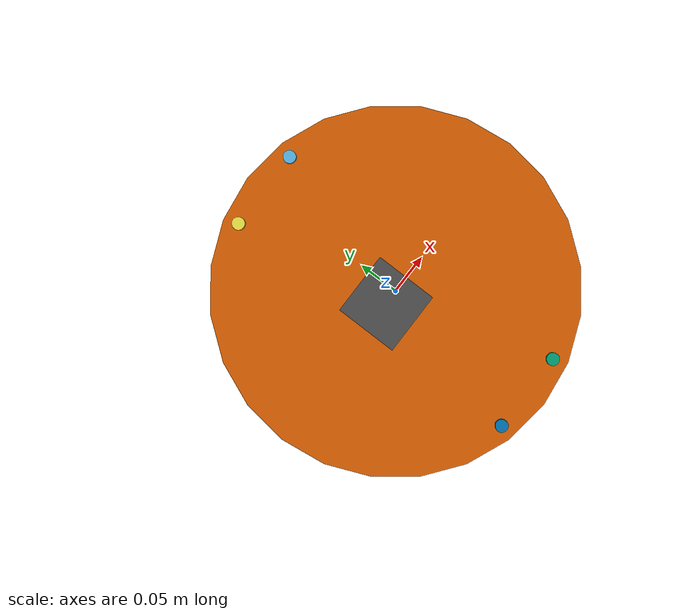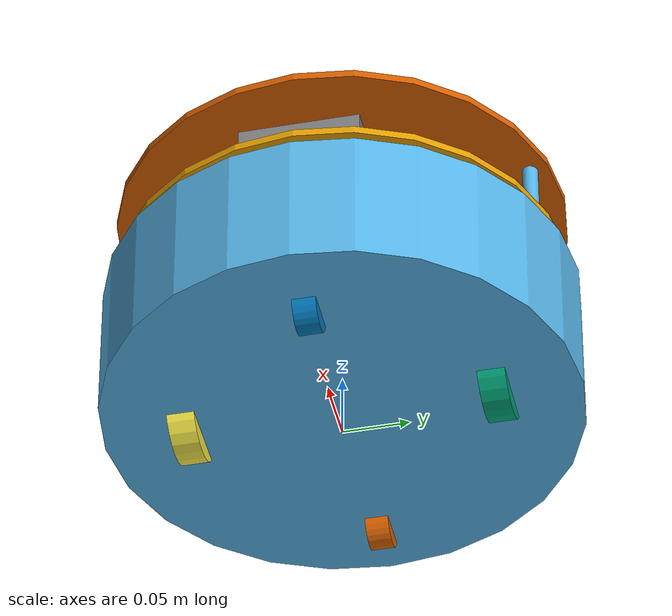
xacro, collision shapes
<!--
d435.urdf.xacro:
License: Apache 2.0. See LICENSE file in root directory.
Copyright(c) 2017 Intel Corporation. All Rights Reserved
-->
<?xml version="1.0"?>
<!--
    - Base      : kobuki
    - Stacks    : hexagons
    - 3d Sensor : d435
-->
<robot name="robot" xmlns:xacro="http://ros.org/wiki/xacro">

  <xacro:include filename="$(find robot_description)/urdf/kobuki.urdf.xacro" />
  <xacro:include filename="$(find robot_description)/urdf/stacks/custom_hexagons.urdf.xacro"/>
  <xacro:include filename="$(find robot_description)/urdf/sensors/d435.urdf.xacro"/>
  <xacro:include filename="$(find robot_description)/urdf/sensors/rplidar.urdf.xacro"/>

  <kobuki/>

  <!-- FOR TESTING -->

  <stack_hexagons parent="base_link"/>

  <sensor_d435 parent="plate_bottom_link">
    <origin xyz="0.115 0 0.0025" rpy="0 0 0"/>
  </sensor_d435>

  <rplidar parent="plate_middle_link">
    <origin xyz="0 0 0.0025" rpy="0 0 ${M_PI}"/>
  </rplidar>
</robot>

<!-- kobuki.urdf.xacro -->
<robot name="kobuki" xmlns:xacro="http://ros.org/wiki/xacro">
  <xacro:include filename="$(find robot_description)/urdf/common_properties.urdf.xacro"/>

  <!-- Kobuki -->
  <xacro:macro name="kobuki">
    <link name="base_footprint"/>
    <joint name="base_joint" type="fixed">
      <origin xyz="0 0 0.0102" rpy="0 0 0" />
      <parent link="base_footprint"/>
      <child link="base_link" />
    </joint>
    <link name="base_link">
      <visual>
        <geometry>
          <!-- new mesh -->
          <mesh filename="package://robot_description/meshes/main_body.dae" />
        </geometry>
        <origin xyz="0.001 0 0.05199" rpy="0 0 0"/>
      </visual>
      <collision name="base">
        <geometry>
          <cylinder length="0.10938" radius="0.178"/>
        </geometry>
        <origin xyz="0.0 0 0.05949" rpy="0 0 0"/>
      </collision>
      <inertial>
        <!-- COM experimentally determined -->
        <origin xyz="0.01 0 0"/>
        <mass value="2.6"/> <!-- 2.4/2.6 kg for small/big battery pack -->
        <inertia ixx="0.019995" ixy="0.0" ixz="0.0"
                 iyy="0.019995" iyz="0.0"
                 izz="0.03675" />
      </inertial>
    </link>

    <joint name="wheel_left_joint" type="continuous">
      <parent link="base_link"/>
      <child link="wheel_left_link"/>
      <origin xyz="0.00 ${0.23/2} 0.0250" rpy="${-M_PI/2} 0 0"/>
      <axis xyz="0 0 1"/>
    </joint>
    <link name="wheel_left_link">
      <visual>
        <geometry>
          <mesh filename="package://robot_description/meshes/wheel.dae"/>
        </geometry>
        <origin xyz="0 0 0" rpy="0 0 0"/>
      </visual>
      <collision>
        <geometry>
          <cylinder length="0.0206" radius="0.0352"/>
        </geometry>
        <origin rpy="0 0 0" xyz="0 0 0"/>
      </collision>
      <inertial>
        <mass value="0.01" />
        <origin xyz="0 0 0" />
        <inertia ixx="0.001" ixy="0.0" ixz="0.0"
                 iyy="0.001" iyz="0.0"
                 izz="0.001" />
      </inertial>
    </link>

    <joint name="wheel_right_joint" type="continuous">
      <parent link="base_link"/>
      <child link="wheel_right_link"/>
      <origin xyz="0.00 -${0.23/2} 0.0250" rpy="${-M_PI/2} 0 0"/>
      <axis xyz="0 0 1"/>
    </joint>
    <link name="wheel_right_link">
      <visual>
        <geometry>
          <mesh filename="package://robot_description/meshes/wheel.dae"/>
        </geometry>
        <origin xyz="0 0 0" rpy="0 0 0"/>
      </visual>
      <collision>
        <geometry>
          <cylinder length="0.0206" radius="0.0350"/>
        </geometry>
        <origin rpy="0 0 0" xyz="0 0 0"/>
      </collision>
      <inertial>
        <mass value="0.01" />
        <origin xyz="0 0 0" />
        <inertia ixx="0.001" ixy="0.0" ixz="0.0"
                 iyy="0.001" iyz="0.0"
                 izz="0.001" />
      </inertial>
    </link>

    <joint name="caster_front_joint" type="fixed">
      <parent link="base_link"/>
      <child link="caster_front_link"/>
      <origin xyz="0.115 0.0 0.007" rpy="${-M_PI/2} 0 0"/>
    </joint>
    <link name="caster_front_link">
      <collision>
        <geometry>
          <cylinder length="0.0176" radius="0.017"/>
        </geometry>
        <origin rpy="0 0 0" xyz="0 0 0"/>
      </collision>
      <inertial>
        <mass value="0.01" />
        <origin xyz="0 0 0" />
        <inertia ixx="0.001" ixy="0.0" ixz="0.0"
                 iyy="0.001" iyz="0.0"
                 izz="0.001" />
      </inertial>
    </link>

    <joint name="caster_back_joint" type="fixed">
      <parent link="base_link"/>
      <child link="caster_back_link"/>
      <origin xyz="-0.135 0.0 0.009" rpy="${-M_PI/2} 0 0"/>
    </joint>
    <link name="caster_back_link">
      <collision>
        <geometry>
          <cylinder length="0.0176" radius="0.017"/>
        </geometry>
        <origin rpy="0 0 0" xyz="0 0 0"/>
      </collision>
      <inertial>
        <mass value="0.01" />
        <origin xyz="0 0 0" />
        <inertia ixx="0.001" ixy="0.0" ixz="0.0"
                 iyy="0.001" iyz="0.0"
                 izz="0.001" />
      </inertial>
    </link>

    <!-- Kobuki's sensors -->
    <joint name="gyro_joint" type="fixed">
      <axis xyz="0 1 0"/>
      <origin xyz="0.056 0.062 0.0202" rpy="0 0 0"/>
      <parent link="base_link"/>
      <child link="gyro_link"/>
    </joint>
    <link name="gyro_link">
      <inertial>
        <mass value="0.001"/>
        <origin xyz="0 0 0" rpy="0 0 0"/>
        <inertia ixx="0.0001" ixy="0" ixz="0"
                 iyy="0.000001" iyz="0"
                 izz="0.0001"/>
      </inertial>
    </link>

    <joint name="cliff_sensor_left_joint" type="fixed">
      <origin xyz="0.08734 0.13601 0.0214" rpy="0 ${M_PI/2} 0" />
      <parent link="base_link"/>
      <child link="cliff_sensor_left_link" />
    </joint>
    <link name="cliff_sensor_left_link">
      <inertial>
        <mass value="0.0001" />
        <origin xyz="0 0 0" />
        <inertia ixx="0.0001" ixy="0.0" ixz="0.0"
                 iyy="0.0001" iyz="0.0"
                 izz="0.0001" />
      </inertial>
    </link>

    <joint name="cliff_sensor_right_joint" type="fixed">
      <origin xyz="0.085 -0.13601 0.0214" rpy="0 ${M_PI/2} 0" />
      <parent link="base_link"/>
      <child link="cliff_sensor_right_link" />
    </joint>
    <link name="cliff_sensor_right_link">
      <inertial>
        <mass value="0.0001" />
        <origin xyz="0 0 0" />
        <inertia ixx="0.0001" ixy="0.0" ixz="0.0"
                 iyy="0.0001" iyz="0.0"
                 izz="0.0001" />
      </inertial>
    </link>

    <joint name="cliff_sensor_front_joint" type="fixed">
      <origin xyz="0.156 0.00 0.0214" rpy="0 ${M_PI/2} 0" />
      <parent link="base_link"/>
      <child link="cliff_sensor_front_link" />
    </joint>
    <link name="cliff_sensor_front_link">
      <inertial>
        <mass value="0.0001" />
        <origin xyz="0 0 0" />
        <inertia ixx="0.0001" ixy="0.0" ixz="0.0"
                 iyy="0.0001" iyz="0.0"
                 izz="0.0001" />
      </inertial>
    </link>

  </xacro:macro>
</robot>

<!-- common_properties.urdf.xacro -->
<robot xmlns:xacro="http://ros.org/wiki/xacro">
  <!--
    These properties must be observed by any machine
    that wants to be defined as a turtlebot. Refer
    to the REP for more details.

    http://www.ros.org/reps/rep-0119.html
   -->

  <!--
    Various useful properties such as constants and materials
  -->
  <xacro:property name="M_PI" value="3.1415926535897931" />

  <xacro:property name="material_white">
    <material name="white">
      <color rgba="1 1 1 1"/>
    </material>
  </xacro:property>
  <xacro:property name="material_grey">
    <material name="grey">
      <color rgba="0.5 0.5 0.5 1"/>
    </material>
  </xacro:property>
  <xacro:property name="material_light_grey">
    <material name="light_grey">
      <color rgba="0.6 0.6 0.6 1"/>
    </material>
  </xacro:property>
  <xacro:property name="material_dark_grey">
    <material name="dark_grey">
      <color rgba="0.3 0.3 0.3 1"/>
    </material>
  </xacro:property>
  <xacro:property name="material_black">
    <material name="black">
      <color rgba="0.1 0.1 0.1 1"/>
    </material>
  </xacro:property>
  <xacro:property name="material_red">
    <material name="red">
      <color rgba="1 0 0 1"/>
    </material>
  </xacro:property>
  <xacro:property name="material_green">
    <material name="green">
      <color rgba="0.0 0.8 0.0 1"/>
    </material>
  </xacro:property>
  <xacro:property name="material_blue">
    <material name="blue">
      <color rgba="0.0 0.0 1.0 1"/>
    </material>
  </xacro:property>
  <xacro:property name="material_grey_blue">
    <material name="grey_blue">
      <color rgba="0.4 0.4 1.0 1"/>
    </material>
  </xacro:property>
  <xacro:property name="material_orange">
    <material name="orange">
      <color rgba="1.0 0.7 0.0 1"/>
    </material>
  </xacro:property>
  <xacro:property name="material_aluminum">
    <material name="aluminum">
	    <color rgba="0.5 0.5 0.5 1"/>
    </material>
  </xacro:property>
</robot>

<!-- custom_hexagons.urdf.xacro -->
<!--
  Hexagon stacks
 -->
<robot name="stack_hexagons" xmlns:xacro="http://ros.org/wiki/xacro">
  <xacro:include filename="$(find robot_description)/urdf/common_properties.urdf.xacro"/>

  <!-- Xacro properties -->
  <xacro:property name="M_SCALE" value="0.001"/>

  <!-- Xacro macros -->
  <!-- Pole macros -->
  <xacro:macro name="stack_bottom_pole" params="parent number x_loc y_loc z_loc">
    <joint name="pole_bottom_${number}_joint" type="fixed">
      <origin xyz="${x_loc} ${y_loc} ${z_loc}" rpy="0 0 0"/>
      <parent link="${parent}"/>
      <child link="pole_bottom_${number}_link"/>
    </joint>
    <link name="pole_bottom_${number}_link">
      <visual>
        <origin xyz="0 0 0" rpy="0 0 0"/>
        <geometry>
          <mesh filename="package://robot_description/meshes/stacks/hexagons/pole_bottom.dae"/>
        </geometry>
      </visual>
      <collision>
        <origin xyz="0 0 0" rpy="0 0 0"/>
        <geometry>
          <cylinder length="0.0492" radius="0.006"/>
        </geometry>
      </collision>
      <inertial>
        <mass value="0.008"/>
        <origin xyz="0 0 0" rpy="0 0 0"/>
        <inertia ixx="0.000001686" ixy="0.0" ixz="0.0"
                 iyy="0.000001686" iyz="0.0"
                 izz="0.000000144"/>
      </inertial>
    </link>
  </xacro:macro>

  <xacro:macro name="stack_middle_pole" params="parent number x_loc y_loc z_loc">
    <joint name="pole_middle_${number}_joint" type="fixed">
      <origin xyz="${x_loc} ${y_loc} ${z_loc}" rpy="0 0 0" />
      <parent link="${parent}"/>
      <child link="pole_middle_${number}_link"/>
    </joint>
    <link name="pole_middle_${number}_link">
      <visual>
        <origin xyz="0 0 0" rpy="0 ${M_PI} 0"/>
        <geometry>
          <mesh filename="package://robot_description/meshes/stacks/hexagons/pole_middle.dae"/>
        </geometry>
      </visual>
      <collision>
        <origin xyz="0 0 0" rpy="0 0 0"/>
        <geometry>
          <cylinder length="0.0608" radius="0.006"/>
        </geometry>
      </collision>
      <inertial>
        <mass value="0.012"/>
        <origin xyz="0 0 0"/>
        <inertia ixx="0.000003805" ixy="0.0" ixz="0.0"
                 iyy="0.000003805" iyz="0.0"
                 izz="0.000000216"/>
      </inertial>
    </link>
  </xacro:macro>

  <xacro:macro name="stack_top_pole" params="parent number x_loc y_loc z_loc">
    <joint name="pole_top_${number}_joint" type="fixed">
      <origin xyz="${x_loc} ${y_loc} ${z_loc}" rpy="0 0 0"/>
      <parent link="${parent}"/>
      <child link="pole_top_${number}_link"/>
    </joint>
    <link name="pole_top_${number}_link">
      <visual>
        <origin xyz="0 0 0" rpy="0 ${M_PI} 0"/>
        <geometry>
          <cylinder length="0.05" radius="0.003"/>
          <xacro:insert_block name="material_aluminum"/>
        </geometry>
      </visual>
      <collision>
        <origin xyz="0 0 0" rpy="0 0 0"/>
        <geometry>
          <cylinder length="0.05" radius="0.003"/>
        </geometry>
      </collision>
      <inertial>
        <mass value="0.060"/>
        <origin xyz="0 0 0"/>
        <inertia ixx="0.000206991" ixy="0.0" ixz="0.0"
                 iyy="0.000206991" iyz="0.0"
                 izz="0.000001080"/>
      </inertial>
    </link>
  </xacro:macro>

  <xacro:macro name="stack_hexagons" params="parent">
    <stack_bottom_pole parent="${parent}" number="0" x_loc= "0.120" y_loc= "0.082" z_loc="0.1028"/>
    <stack_bottom_pole parent="${parent}" number="1" x_loc= "0.055" y_loc= "0.120" z_loc="0.1028"/>
    <stack_bottom_pole parent="${parent}" number="2" x_loc="-0.055" y_loc= "0.120" z_loc="0.1028"/>
    <stack_bottom_pole parent="${parent}" number="3" x_loc= "0.120" y_loc="-0.082" z_loc="0.1028"/>
    <stack_bottom_pole parent="${parent}" number="4" x_loc= "0.055" y_loc="-0.120" z_loc="0.1028"/>
    <stack_bottom_pole parent="${parent}" number="5" x_loc="-0.055" y_loc="-0.120" z_loc="0.1028"/>

    <joint name="plate_bottom_joint" type="fixed">
      <origin xyz="0.02364 0.0 0.1306" rpy="0 0 0"/>
      <parent link="${parent}"/>
      <child link="plate_bottom_link"/>
    </joint>
    <link name="plate_bottom_link">
      <visual>
        <origin xyz="0 0 0" rpy="0 0 0"/>
        <geometry>
          <mesh filename="package://robot_description/meshes/stacks/hexagons/plate_bottom.dae"/>
        </geometry>
      </visual>
      <collision>
        <origin xyz="-0.02364 0 0" rpy="0 0 0"/>
        <geometry>
          <cylinder length="0.006" radius="0.170"/>
        </geometry>
      </collision>
      <inertial>
        <mass value="0.520" />
        <origin xyz="0 0 0" />
        <inertia ixx="0.003328" ixy="0.0" ixz="0.0"
                 iyy="0.003328" iyz="0.0"
                 izz="0.006656" />
      </inertial>
    </link>

    <stack_middle_pole parent="${parent}" number="0" x_loc= "0.0381" y_loc= "0.1505" z_loc="0.1640"/>
    <stack_middle_pole parent="${parent}" number="1" x_loc= "0.0381" y_loc="-0.1505" z_loc="0.1640"/>
    <stack_middle_pole parent="${parent}" number="2" x_loc="-0.0381" y_loc= "0.1505" z_loc="0.1640"/>
    <stack_middle_pole parent="${parent}" number="3" x_loc="-0.0381" y_loc="-0.1505" z_loc="0.1640"/>

    <joint name="plate_middle_joint" type="fixed">
      <origin xyz="-0.01364 0.0 0.1874" rpy="0 0 0"/>
      <parent link="${parent}"/>
      <child link="plate_middle_link"/>
    </joint>
    <link name="plate_middle_link">
      <visual>
        <origin xyz="0 0 0" rpy="0 0 0"/>
        <geometry>
          <mesh filename="package://robot_description/meshes/stacks/hexagons/plate_top.dae"/>
        </geometry>
      </visual>
      <collision>
        <origin xyz="0.01364 0.0 0.0" rpy="0 0 0"/>
        <geometry>
          <cylinder length="0.006" radius="0.170"/>
        </geometry>
      </collision>
      <inertial>
        <mass value="0.520" />
        <origin xyz="0 0 0" />
        <inertia ixx="0.003328" ixy="0.0" ixz="0.0"
                 iyy="0.003328" iyz="0.0"
                 izz="0.006656" />
      </inertial>
    </link>

  </xacro:macro>
</robot>

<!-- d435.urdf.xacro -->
<robot name="sensor_d435" xmlns:xacro="http://ros.org/wiki/xacro">
  <xacro:include filename="$(find robot_description)/urdf/common_properties.urdf.xacro"/>

  <xacro:macro name="sensor_d435" params="parent *origin">
    <!-- The following values are approximate, and the camera node
     publishing TF values with actual calibrated camera extrinsic values -->
    <xacro:property name="d435_cam_depth_to_left_ir_offset"  value="0.0"/>
    <xacro:property name="d435_cam_depth_to_right_ir_offset" value="-0.050"/>
    <xacro:property name="d435_cam_depth_to_color_offset"    value="0.015"/>

    <!-- The following values model the aluminum peripherial case for the
  	D435 camera, with the camera joint represented by the actual
  	peripherial camera tripod mount -->
    <xacro:property name="d435_cam_width"  value="0.090"/>
    <xacro:property name="d435_cam_height" value="0.025"/>
    <xacro:property name="d435_cam_depth"  value="0.02505"/>
    <xacro:property name="d435_cam_mount_from_center_offset" value="0.0149"/>

    <!-- The following offset is relative the the physical D435 camera peripherial
  	camera tripod mount -->
    <xacro:property name="d435_cam_depth_px" value="${d435_cam_mount_from_center_offset}"/>
    <xacro:property name="d435_cam_depth_py" value="0.0175"/>
    <xacro:property name="d435_cam_depth_pz" value="${d435_cam_height/2}"/>

    <!-- camera body, with origin at bottom screw mount -->
    <joint name="camera_joint" type="fixed">
      <xacro:insert_block name="origin" />
      <parent link="${parent}"/>
      <child link="camera_bottom_screw_frame" />
    </joint>
    <link name="camera_bottom_screw_frame"/>

    <joint name="camera_link_joint" type="fixed">
      <origin xyz="0 ${d435_cam_depth_py} ${d435_cam_depth_pz}" rpy="0 0 0"/>
      <parent link="camera_bottom_screw_frame"/>
      <child link="camera_link" />
    </joint>

    <link name="camera_link">
      <visual>
      <origin xyz="${d435_cam_mount_from_center_offset} ${-d435_cam_depth_py} 0" rpy="${M_PI/2} 0 ${M_PI/2}"/>
        <geometry>
          <mesh filename="package://robot_description/meshes/sensors/d435.dae" />
        </geometry>
        <xacro:insert_block name="material_aluminum"/>
      </visual>
      <collision>
        <origin xyz="0 ${-d435_cam_depth_py} 0" rpy="0 0 0"/>
        <geometry>
          <box size="${d435_cam_depth} ${d435_cam_width} ${d435_cam_height}"/>
        </geometry>
      </collision>
      <inertial>
        <!-- The following are not reliable values, and should not be used for modeling -->
        <mass value="0.564" />
        <origin xyz="0 0 0" />
        <inertia ixx="0.003881243" ixy="0.0" ixz="0.0"
                 iyy="0.000498940" iyz="0.0"
                 izz="0.003879257" />
      </inertial>
    </link>

    <!-- camera depth joints and links -->
    <joint name="camera_depth_joint" type="fixed">
      <origin xyz="0 0 0" rpy="0 0 0"/>
      <parent link="camera_link"/>
      <child link="camera_depth_frame" />
    </joint>
    <link name="camera_depth_frame"/>

    <joint name="camera_depth_optical_joint" type="fixed">
      <origin xyz="0 0 0" rpy="${-M_PI/2} 0 ${-M_PI/2}" />
      <parent link="camera_depth_frame" />
      <child link="camera_depth_optical_frame" />
    </joint>
    <link name="camera_depth_optical_frame"/>

    <!-- camera left IR joints and links -->
    <joint name="camera_left_ir_joint" type="fixed">
      <origin xyz="0 ${d435_cam_depth_to_left_ir_offset} 0" rpy="0 0 0" />
      <parent link="camera_depth_frame" />
      <child link="camera_left_ir_frame" />
    </joint>
    <link name="camera_left_ir_frame"/>

    <joint name="camera_left_ir_optical_joint" type="fixed">
      <origin xyz="0 0 0" rpy="${-M_PI/2} 0 ${-M_PI/2}" />
      <parent link="camera_left_ir_frame" />
      <child link="camera_left_ir_optical_frame" />
    </joint>
    <link name="camera_left_ir_optical_frame"/>

    <!-- camera right IR joints and links -->
    <joint name="camera_right_ir_joint" type="fixed">
      <origin xyz="0 ${d435_cam_depth_to_right_ir_offset} 0" rpy="0 0 0" />
      <parent link="camera_depth_frame" />
      <child link="camera_right_ir_frame" />
    </joint>
    <link name="camera_right_ir_frame"/>

    <joint name="camera_right_ir_optical_joint" type="fixed">
      <origin xyz="0 0 0" rpy="${-M_PI/2} 0 ${-M_PI/2}" />
      <parent link="camera_right_ir_frame" />
      <child link="camera_right_ir_optical_frame" />
    </joint>
    <link name="camera_right_ir_optical_frame"/>

    <!-- camera color joints and links -->
    <joint name="camera_color_joint" type="fixed">
      <origin xyz="0 ${d435_cam_depth_to_color_offset} 0" rpy="0 0 0" />
      <parent link="camera_depth_frame" />
      <child link="camera_color_frame" />
    </joint>
    <link name="camera_color_frame"/>

    <joint name="camera_color_optical_joint" type="fixed">
      <origin xyz="0 0 0" rpy="${-M_PI/2} 0 ${-M_PI/2}" />
      <parent link="camera_color_frame" />
      <child link="camera_color_optical_frame" />
    </joint>
    <link name="camera_color_optical_frame"/>
  </xacro:macro>
</robot>

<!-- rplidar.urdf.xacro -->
<robot xmlns:xacro="http://ros.org/wiki/xacro">
  <xacro:include filename="$(find robot_description)/urdf/common_properties.urdf.xacro"/>

  <xacro:macro name="rplidar_model" params="name parent *origin">
    <joint name="${name}_joint" type="fixed">
      <xacro:insert_block name="origin" />
      <parent link="${parent}"/>
      <child link="${name}_frame"/>
    </joint>

    <link name="${name}_frame">
      <inertial>
        <mass value="0.270" />
        <origin xyz="0 0 0" rpy="0 0 0" />
        <inertia ixx="2.632e-4" ixy="0" ixz="0"
                 iyy="2.632e-4" iyz="0"
                 izz="1.62e-4" />
      </inertial>
      <visual>
        <origin xyz="0 0 0" rpy="0 0 -${M_PI/2}" />
        <geometry>
          <mesh filename="package://robot_description/meshes/sensors/rplidar_a2.stl"/>
        </geometry>
        <xacro:insert_block name="material_dark_grey"/>
      </visual>
      <collision>
        <origin xyz="0 0 -0.0115" rpy="0 0 0" />
        <geometry>
          <box size="0.058 0.058 0.087" />
        </geometry>
      </collision>
    </link>
  </xacro:macro>

  <xacro:macro name="rplidar" params="parent *origin">
    <xacro:rplidar_model name="rplidar" parent="${parent}">
      <xacro:insert_block name="origin" />
    </xacro:rplidar_model>
  </xacro:macro>
</robot>
